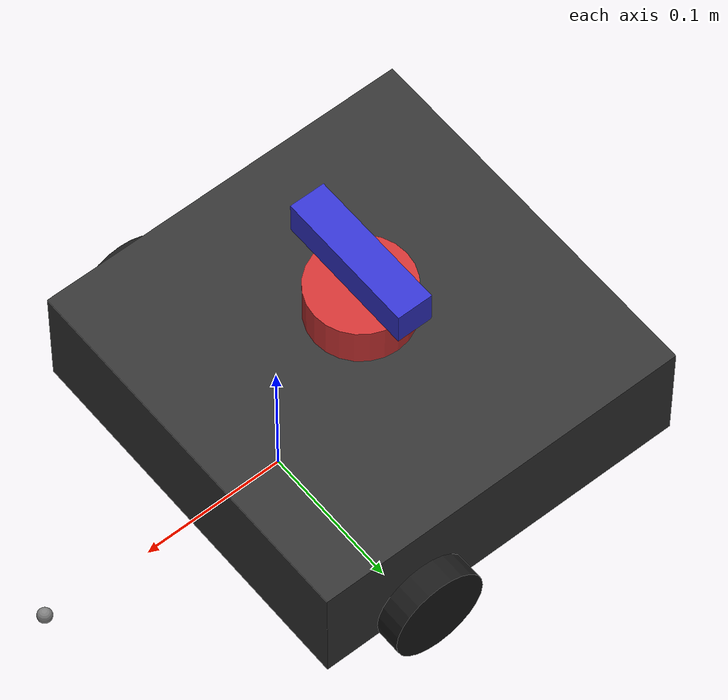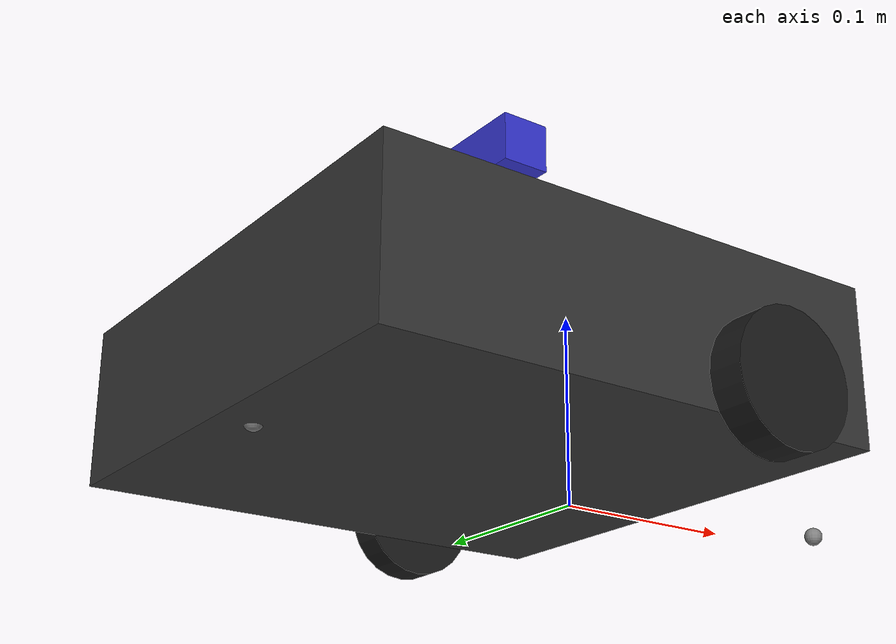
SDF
<?xml version="1.0"?>
<sdf version="1.6">
  <model name="turtlebot3_waffle">
    <static>false</static>

    <link name="base_footprint">
      <pose>0 0 0.0102 0 0 0</pose>
    </link>

    <link name="base_link">
      <inertial>
        <pose>-0.064 0 0.048 0 0 0</pose>
        <inertia>
          <ixx>0.001</ixx>
          <ixy>0.000</ixy>
          <ixz>0.000</ixz>
          <iyy>0.001</iyy>
          <iyz>0.000</iyz>
          <izz>0.001</izz>
        </inertia>
        <mass>1.0</mass>
      </inertial>

      <collision name="base_collision">
        <pose>-0.064 0 0.048 0 0 0</pose>
        <geometry>
          <box>
            <size>0.266 0.266 0.081</size>
          </box>
        </geometry>
      </collision>

      <visual name="base_visual">
        <pose>-0.064 0 0.048 0 0 0</pose>
        <geometry>
          <box>
            <size>0.266 0.266 0.081</size>
          </box>
        </geometry>
        <material>
          <ambient>0.2 0.2 0.2 1</ambient>
          <diffuse>0.2 0.2 0.2 1</diffuse>
        </material>
      </visual>
    </link>

    <joint name="base_joint" type="fixed">
      <parent>base_footprint</parent>
      <child>base_link</child>
    </joint>

    <!-- Left Wheel -->
    <link name="wheel_left_link">
      <pose>0.0 0.144 0.023 -1.57 0 0</pose>
      <inertial>
        <pose>0 0 0 0 0 0</pose>
        <inertia>
          <ixx>0.001</ixx>
          <ixy>0.000</ixy>
          <ixz>0.000</ixz>
          <iyy>0.001</iyy>
          <iyz>0.000</iyz>
          <izz>0.001</izz>
        </inertia>
        <mass>0.1</mass>
      </inertial>

      <collision name="wheel_left_collision">
        <geometry>
          <cylinder>
            <radius>0.033</radius>
            <length>0.018</length>
          </cylinder>
        </geometry>
        <surface>
          <friction>
            <ode>
              <mu>1.0</mu>
              <mu2>1.0</mu2>
              <fdir1>0 0 1</fdir1>
            </ode>
          </friction>
        </surface>
      </collision>

      <visual name="wheel_left_visual">
        <geometry>
          <cylinder>
            <radius>0.033</radius>
            <length>0.018</length>
          </cylinder>
        </geometry>
        <material>
          <ambient>0.1 0.1 0.1 1</ambient>
          <diffuse>0.1 0.1 0.1 1</diffuse>
        </material>
      </visual>
    </link>

    <joint name="wheel_left_joint" type="continuous">
      <parent>base_link</parent>
      <child>wheel_left_link</child>
      <axis>
        <xyz>0 0 1</xyz>
      </axis>
    </joint>

    <!-- Right Wheel -->
    <link name="wheel_right_link">
      <pose>0.0 -0.144 0.023 -1.57 0 0</pose>
      <inertial>
        <pose>0 0 0 0 0 0</pose>
        <inertia>
          <ixx>0.001</ixx>
          <ixy>0.000</ixy>
          <ixz>0.000</ixz>
          <iyy>0.001</iyy>
          <iyz>0.000</iyz>
          <izz>0.001</izz>
        </inertia>
        <mass>0.1</mass>
      </inertial>

      <collision name="wheel_right_collision">
        <geometry>
          <cylinder>
            <radius>0.033</radius>
            <length>0.018</length>
          </cylinder>
        </geometry>
        <surface>
          <friction>
            <ode>
              <mu>1.0</mu>
              <mu2>1.0</mu2>
              <fdir1>0 0 1</fdir1>
            </ode>
          </friction>
        </surface>
      </collision>

      <visual name="wheel_right_visual">
        <geometry>
          <cylinder>
            <radius>0.033</radius>
            <length>0.018</length>
          </cylinder>
        </geometry>
        <material>
          <ambient>0.1 0.1 0.1 1</ambient>
          <diffuse>0.1 0.1 0.1 1</diffuse>
        </material>
      </visual>
    </link>

    <joint name="wheel_right_joint" type="continuous">
      <parent>base_link</parent>
      <child>wheel_right_link</child>
      <axis>
        <xyz>0 0 1</xyz>
      </axis>
    </joint>

    <!-- Caster Front -->
    <link name="caster_front_link">
      <pose>-0.177 0 0.01 0 0 0</pose>
      <inertial>
        <mass>0.01</mass>
        <inertia>
          <ixx>0.0001</ixx>
          <ixy>0</ixy>
          <ixz>0</ixz>
          <iyy>0.0001</iyy>
          <iyz>0</iyz>
          <izz>0.0001</izz>
        </inertia>
      </inertial>
      <collision name="collision">
        <geometry>
          <sphere>
            <radius>0.005</radius>
          </sphere>
        </geometry>
      </collision>
      <visual name="visual">
        <geometry>
          <sphere>
            <radius>0.005</radius>
          </sphere>
        </geometry>
        <material>
          <ambient>0.5 0.5 0.5 1</ambient>
        </material>
      </visual>
    </link>

    <joint name="caster_front_joint" type="fixed">
      <parent>base_link</parent>
      <child>caster_front_link</child>
    </joint>

    <!-- Caster Back -->
    <link name="caster_back_link">
      <pose>0.177 0 0.01 0 0 0</pose>
      <inertial>
        <mass>0.01</mass>
        <inertia>
          <ixx>0.0001</ixx>
          <ixy>0</ixy>
          <ixz>0</ixz>
          <iyy>0.0001</iyy>
          <iyz>0</iyz>
          <izz>0.0001</izz>
        </inertia>
      </inertial>
      <collision name="collision">
        <geometry>
          <sphere>
            <radius>0.005</radius>
          </sphere>
        </geometry>
      </collision>
      <visual name="visual">
        <geometry>
          <sphere>
            <radius>0.005</radius>
          </sphere>
        </geometry>
        <material>
          <ambient>0.5 0.5 0.5 1</ambient>
        </material>
      </visual>
    </link>

    <joint name="caster_back_joint" type="fixed">
      <parent>base_link</parent>
      <child>caster_back_link</child>
    </joint>

    <!-- Lidar Link -->
    <link name="base_scan">
      <pose>-0.064 0 0.122 0 0 0</pose>
      <inertial>
        <mass>0.01</mass>
        <inertia>
          <ixx>0.0001</ixx>
          <ixy>0</ixy>
          <ixz>0</ixz>
          <iyy>0.0001</iyy>
          <iyz>0</iyz>
          <izz>0.0001</izz>
        </inertia>
      </inertial>
      <collision name="collision">
        <geometry>
          <cylinder>
            <radius>0.035</radius>
            <length>0.03</length>
          </cylinder>
        </geometry>
      </collision>
      <visual name="visual">
        <geometry>
          <cylinder>
            <radius>0.035</radius>
            <length>0.03</length>
          </cylinder>
        </geometry>
        <material>
          <ambient>0.8 0.2 0.2 1</ambient>
          <diffuse>0.8 0.2 0.2 1</diffuse>
        </material>
      </visual>

      <!-- Lidar Sensor -->
      <sensor name="lidar" type="ray">
        <always_on>true</always_on>
        <visualize>true</visualize>
        <update_rate>10</update_rate>
        <ray>
          <scan>
            <horizontal>
              <samples>360</samples>
              <resolution>1</resolution>
              <min_angle>-3.14159</min_angle>
              <max_angle>3.14159</max_angle>
            </horizontal>
          </scan>
          <range>
            <min>0.12</min>
            <max>3.5</max>
            <resolution>0.015</resolution>
          </range>
          <noise>
            <type>gaussian</type>
            <mean>0.0</mean>
            <stddev>0.01</stddev>
          </noise>
        </ray>
        <plugin name="lidar_plugin" filename="libgazebo_ros_laser.so">
          <ros>
            <namespace>/</namespace>
            <remapping>~/out:=scan</remapping>
          </ros>
          <output_type>sensor_msgs/LaserScan</output_type>
          <frame_name>base_scan</frame_name>
        </plugin>
      </sensor>
    </link>

    <joint name="scan_joint" type="fixed">
      <parent>base_link</parent>
      <child>base_scan</child>
    </joint>

    <!-- Camera Link -->
    <link name="camera_link">
      <pose>-0.064 0 0.161 0 0 0</pose>
      <inertial>
        <mass>0.01</mass>
        <inertia>
          <ixx>0.0001</ixx>
          <ixy>0</ixy>
          <ixz>0</ixz>
          <iyy>0.0001</iyy>
          <iyz>0</iyz>
          <izz>0.0001</izz>
        </inertia>
      </inertial>
      <collision name="collision">
        <geometry>
          <box>
            <size>0.025 0.1 0.025</size>
          </box>
        </geometry>
      </collision>
      <visual name="visual">
        <geometry>
          <box>
            <size>0.025 0.1 0.025</size>
          </box>
        </geometry>
        <material>
          <ambient>0.2 0.2 0.8 1</ambient>
          <diffuse>0.2 0.2 0.8 1</diffuse>
        </material>
      </visual>

      <!-- RGB Camera Sensor -->
      <sensor name="camera" type="camera">
        <always_on>true</always_on>
        <visualize>true</visualize>
        <update_rate>30</update_rate>
        <camera>
          <horizontal_fov>1.085595</horizontal_fov>
          <image>
            <width>640</width>
            <height>480</height>
            <format>R8G8B8</format>
          </image>
          <clip>
            <near>0.003</near>
            <far>100</far>
          </clip>
          <noise>
            <type>gaussian</type>
            <mean>0.0</mean>
            <stddev>0.007</stddev>
          </noise>
        </camera>
        <plugin name="camera_plugin" filename="libgazebo_ros_camera.so">
          <ros>
            <namespace>/</namespace>
            <remapping>~/image_raw:=camera/image_raw</remapping>
            <remapping>~/camera_info:=camera/camera_info</remapping>
          </ros>
          <frame_name>camera_link</frame_name>
          <hack_baseline>0.07</hack_baseline>
        </plugin>
      </sensor>
    </link>

    <joint name="camera_joint" type="fixed">
      <parent>base_link</parent>
      <child>camera_link</child>
    </joint>

    <!-- IMU Link -->
    <link name="imu_link">
      <pose>-0.064 0 0.048 0 0 0</pose>
      <inertial>
        <mass>0.001</mass>
        <inertia>
          <ixx>0.000001</ixx>
          <ixy>0</ixy>
          <ixz>0</ixz>
          <iyy>0.000001</iyy>
          <iyz>0</iyz>
          <izz>0.000001</izz>
        </inertia>
      </inertial>
    </link>

    <joint name="imu_joint" type="fixed">
      <parent>base_link</parent>
      <child>imu_link</child>
    </joint>

    <!-- Differential Drive Plugin -->
    <plugin name="diff_drive" filename="libgazebo_ros_diff_drive.so">
      <ros>
        <namespace>/</namespace>
      </ros>
      <update_rate>50</update_rate>
      <left_joint>wheel_left_joint</left_joint>
      <right_joint>wheel_right_joint</right_joint>
      <wheel_separation>0.288</wheel_separation>
      <wheel_diameter>0.066</wheel_diameter>
      <max_wheel_torque>20</max_wheel_torque>
      <max_wheel_acceleration>1.0</max_wheel_acceleration>
      <publish_odom>true</publish_odom>
      <publish_odom_tf>true</publish_odom_tf>
      <publish_wheel_tf>false</publish_wheel_tf>
      <odometry_source>world</odometry_source>
      <odometry_frame>odom</odometry_frame>
      <robot_base_frame>base_footprint</robot_base_frame>
      <cmd_vel_topic>cmd_vel</cmd_vel_topic>
      <odometry_topic>odom</odometry_topic>
      <covariance_x>0.0001</covariance_x>
      <covariance_y>0.0001</covariance_y>
      <covariance_yaw>0.01</covariance_yaw>
    </plugin>

    <!-- IMU Plugin -->
    <plugin name="imu_plugin" filename="libgazebo_ros_imu_sensor.so">
      <ros>
        <namespace>/</namespace>
        <remapping>~/out:=imu</remapping>
      </ros>
      <frame_name>imu_link</frame_name>
      <initial_orientation_as_reference>false</initial_orientation_as_reference>
      <gaussian_noise>0.001</gaussian_noise>
      <xyz_offset>0 0 0</xyz_offset>
      <rpy_offset>0 0 0</rpy_offset>
      <update_rate>100</update_rate>
      <always_on>true</always_on>
      <visualize>false</visualize>
    </plugin>

    <!-- Joint State Publisher -->
    <plugin name="joint_state_publisher" filename="libgazebo_ros_joint_state_publisher.so">
      <ros>
        <namespace>/</namespace>
        <remapping>~/out:=joint_states</remapping>
      </ros>
      <update_rate>50</update_rate>
      <joint_name>wheel_left_joint</joint_name>
      <joint_name>wheel_right_joint</joint_name>
    </plugin>

  </model>
</sdf>
